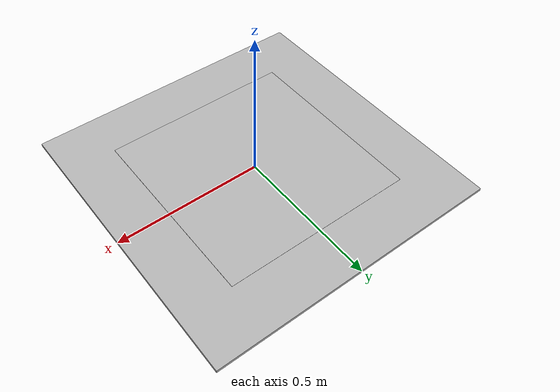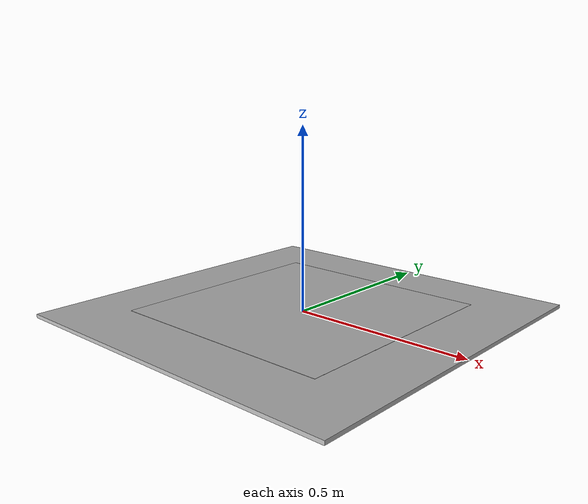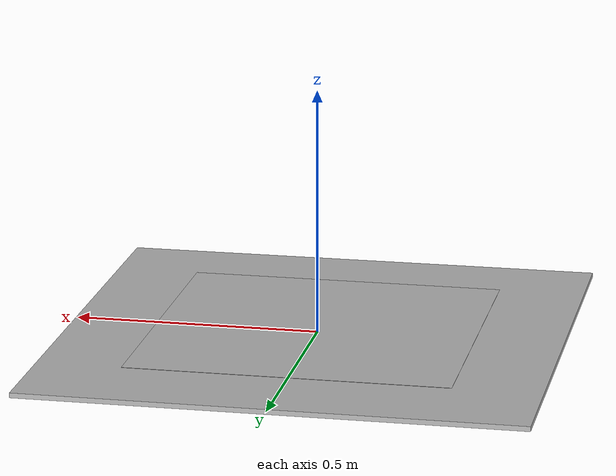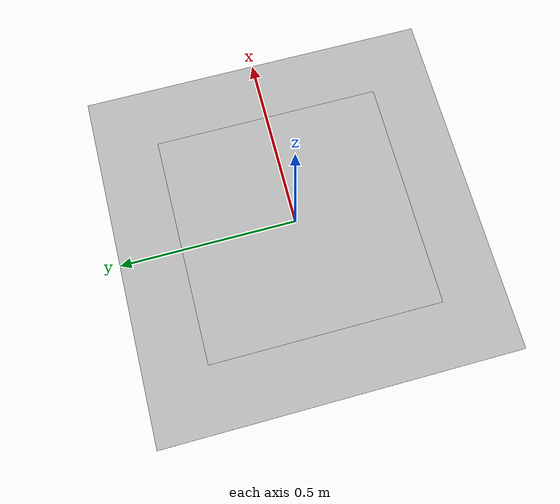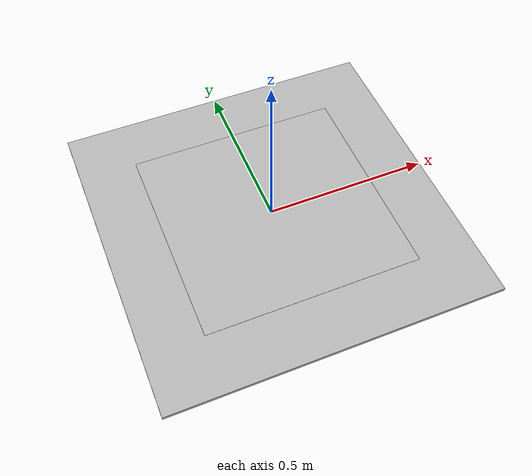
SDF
<?xml version="1.0" ?>
<sdf version="1.6">
	<model name="landing_pad">
		<!--plugin name="landing_pad_velocity_controller" filename="liblanding_pad_velocity_controller_plugin.so"/-->
		<static>false</static>
		<link name="link">
			<collision name="collision">
				<geometry>
					<box>
						<size>1 1 0.01</size>
					</box>
				</geometry>
			</collision>
			<visual name="visual">
				<geometry>
					<box>
						<size>1 1 0.01</size>
					</box>
				</geometry>
			</visual>

			<visual name="landing_pad_whycode">
				<pose>0 0 0.01 0 0 3.1415926</pose>
				<cast_shadows>true</cast_shadows>
				<geometry>
					<plane>
						<normal>0 0 1</normal>
						<size>0.65 0.65</size>
					</plane>
				</geometry>
				<material>
					<script>
						<uri>file://media/materials/scripts/gazebo.material</uri>
					<name>Gazebo/LandingPadWhyCode</name>
					</script>
				</material>
			</visual>

		</link>
	</model>
</sdf>
